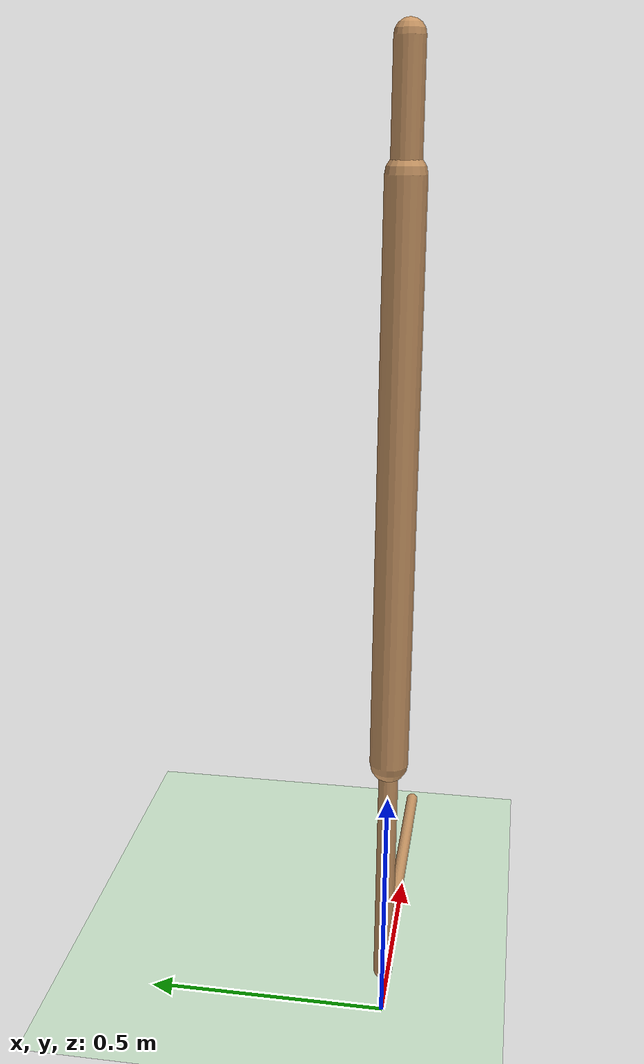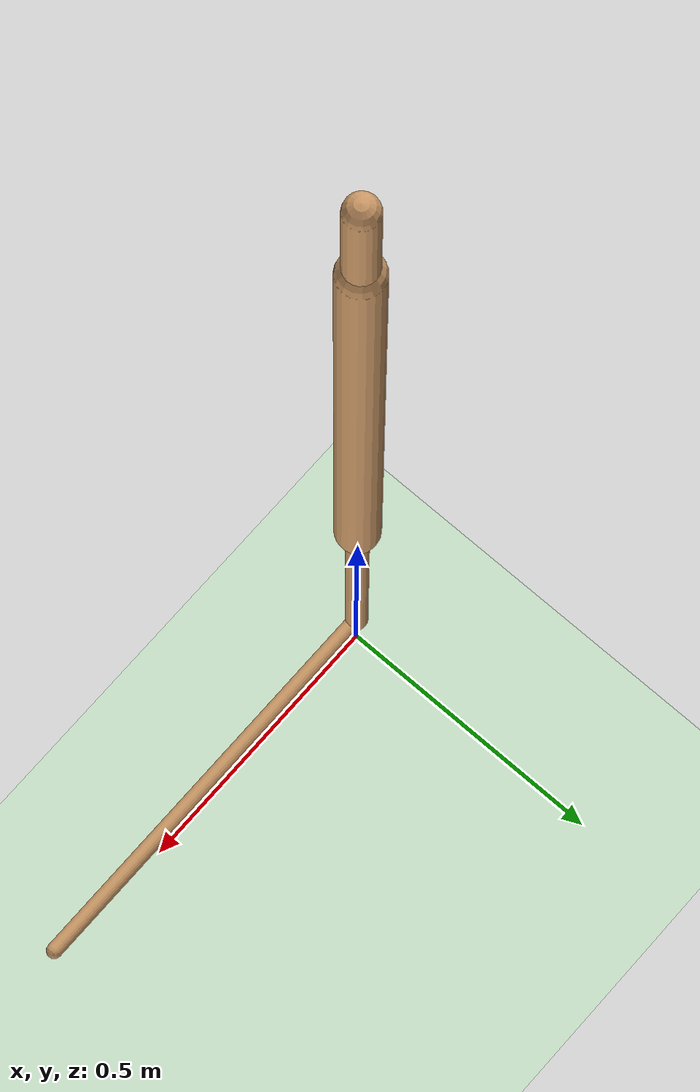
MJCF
<mujoco model="walker2d">
  <compiler angle="degree" inertiafromgeom="true" />
  <default>
    <joint armature="0.01" damping=".1" limited="true" />
    <geom conaffinity="0" condim="3" contype="1" density="1000" friction=".7 .1 .1" rgba="0.8 0.6 .4 1" />
  </default>
  <option integrator="RK4" timestep="0.002" />
  <worldbody>
    <light cutoff="100" diffuse="1 1 1" dir="-0 0 -1.3" directional="true" exponent="1" pos="0 0 1.3" specular=".1 .1 .1" />
    <geom conaffinity="1" condim="3" name="floor" pos="0 0 0" rgba="0.8 0.9 0.8 1" size="40 40 40" type="plane" material="MatPlane" />
    <body name="torso" pos="0 0 1.8182807326316834">
      <camera name="track" mode="trackcom" pos="0 -5 -1.25" xyaxes="1 0 0 0 0 1" />
      <joint armature="0" axis="1 0 0" damping="0" limited="false" name="rootx" pos="0 0 -1.25" stiffness="0" type="slide" />
      <joint armature="0" axis="0 0 1" damping="0" limited="false" name="rootz" pos="0 0 -1.25" ref="1.25" stiffness="0" type="slide" />
      <joint armature="0" axis="0 1 0" damping="0" limited="false" name="rooty" pos="0 0 0" stiffness="0" type="hinge" />
      <geom friction="0.9" name="torso_geom" size="0.028179995715618134 0.11234021186828613" type="capsule" />
      <body name="thigh" pos="0 0 -0.11234021186828613">
        <joint axis="0 -1 0" name="thigh_joint" pos="0 0 0" range="-150 0" type="hinge" />
        <site name="torso_thigh_site" pos="0 0 0" size="0.01" type="sphere" rgba="1 0 0 0.5" />
        <geom friction="0.9" pos="0 0 -0.5625336766242981" name="thigh_geom" size="0.03811920806765556 0.5625336766242981" type="capsule" />
        <body name="leg" pos="0 0 -1.3655039370059967">
          <joint axis="0 -1 0" name="leg_joint" pos="0 0 0.2404365837574005" range="-150 0" type="hinge" />
          <site name="thigh_leg_site" pos="0 0 0.25" size="0.01" type="sphere" rgba="1 0 0 0.5" />
          <geom friction="0.9" name="leg_geom" size="0.01943189650774002 0.2404365837574005" type="capsule" />
          <body name="foot" pos="0.7527724504470825 0 -0.3404365837574005">
            <joint axis="0 -1 0" name="foot_joint" pos="-0.7527724504470825 0 0.1" range="-45 45" type="hinge" />
            <site name="leg_foot_site" pos="-0.2 0 0.1" size="0.01" type="sphere" rgba="1 0 0 0.5" />
            <geom friction="0.9" pos="-0.37638622522354126 0 0.1" quat="0.70710678118654757 0 -0.70710678118654746 0" name="foot_geom" size="0.013655489310622215 0.37638622522354126" type="capsule" />
          </body>
        </body>
      </body>

      <body name="thigh_left" pos="0 0 -0.11234021186828613">
        <joint axis="0 -1 0" name="thigh_left_joint" pos="0 0 0" range="-150 0" type="hinge" />
        <site name="torso_thigh_left_site" pos="0 0 0" size="0.01" type="sphere" rgba="1 0 0 0.5" />
        <geom friction="0.9" name="thigh_left_geom" rgba=".7 .3 .6 1" size="0.03811920806765556 0.5625336766242981" pos="0 0 -0.5625336766242981" type="capsule" />
        <body name="leg_left" pos="0 0 -1.3655039370059967">
          <joint axis="0 -1 0" name="leg_left_joint" pos="0 0 0.2404365837574005" range="-150 0" type="hinge" />
          <site name="thigh_leg_left_site" pos="0 0 0.25" size="0.01" type="sphere" rgba="1 0 0 0.5" />
          <geom friction="0.9" name="leg_left_geom" rgba=".7 .3 .6 1" size="0.01943189650774002 0.2404365837574005" type="capsule" />
          <body name="foot_left" pos="0.7527724504470825 0 -0.3404365837574005">
            <joint axis="0 -1 0" name="foot_left_joint" pos="-0.7527724504470825 0 0.1" range="-45 45" type="hinge" />
            <site name="leg_foot_left_site" pos="-0.2 0 0.1" size="0.01" type="sphere" rgba="1 0 0 0.5" />
            <geom friction="1.9" name="foot_left_geom" rgba=".7 .3 .6 1" size="0.013655489310622215 0.37638622522354126" pos="-0.37638622522354126 0 0.1" type="capsule" quat="0.70710678118654757 0 -0.70710678118654746 0" />
          </body>
        </body>
      </body>
    </body>
  </worldbody>
  <actuator>

    <motor ctrllimited="true" ctrlrange="-1.0 1.0" gear="145.31610185993918" joint="thigh_joint" />
    <motor ctrllimited="true" ctrlrange="-1.0 1.0" gear="22.697129467351438" joint="leg_joint" />
    <motor ctrllimited="true" ctrlrange="-1.0 1.0" gear="19.4960106514908" joint="foot_joint" />
    <motor ctrllimited="true" ctrlrange="-1.0 1.0" gear="145.31610185993918" joint="thigh_left_joint" />
    <motor ctrllimited="true" ctrlrange="-1.0 1.0" gear="22.697129467351438" joint="leg_left_joint" />
    <motor ctrllimited="true" ctrlrange="-1.0 1.0" gear="19.4960106514908" joint="foot_left_joint" />

  </actuator>
    <asset>
        <texture type="skybox" builtin="gradient" rgb1=".4 .5 .6" rgb2="0 0 0" width="100" height="100" />
        <texture builtin="flat" height="1278" mark="cross" markrgb="1 1 1" name="texgeom" random="0.01" rgb1="0.8 0.6 0.4" rgb2="0.8 0.6 0.4" type="cube" width="127" />
        <texture builtin="checker" height="100" name="texplane" rgb1="0 0 0" rgb2="0.8 0.8 0.8" type="2d" width="100" />
        <material name="MatPlane" reflectance="0.5" shininess="1" specular="1" texrepeat="60 60" texture="texplane" />
        <material name="geom" texture="texgeom" texuniform="true" />
    </asset>

  <sensor>
    <force site="torso_thigh_site" name="torso_thigh_sensor" />
    <force site="thigh_leg_site" name="thigh_leg_sensor" />
    <force site="leg_foot_site" name="leg_foot_sensor" />
    <force site="torso_thigh_left_site" name="torso_thigh_left_sensor" />
    <force site="thigh_leg_left_site" name="thigh_leg_left_sensor" />
    <force site="leg_foot_left_site" name="leg_foot_left_sensor" />
  </sensor>
</mujoco>
